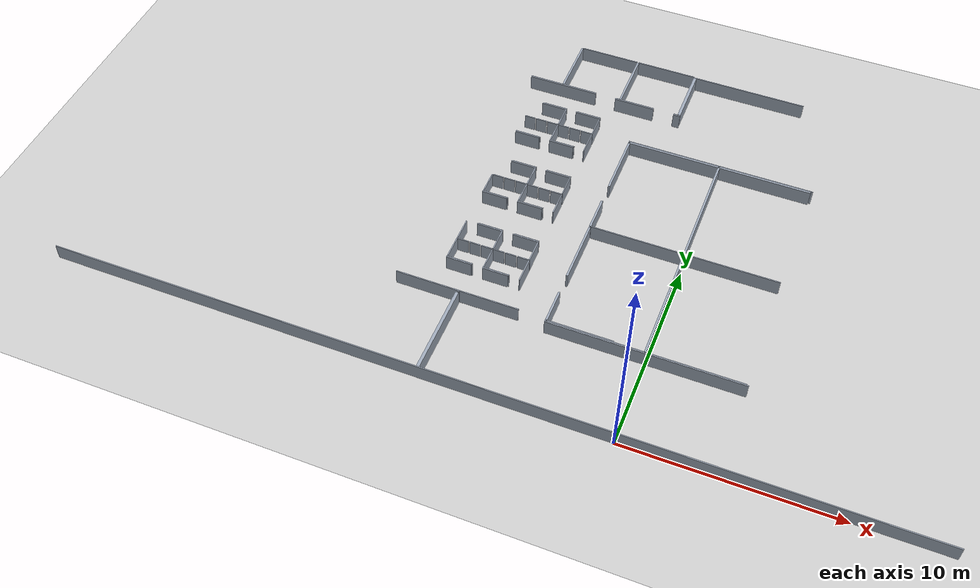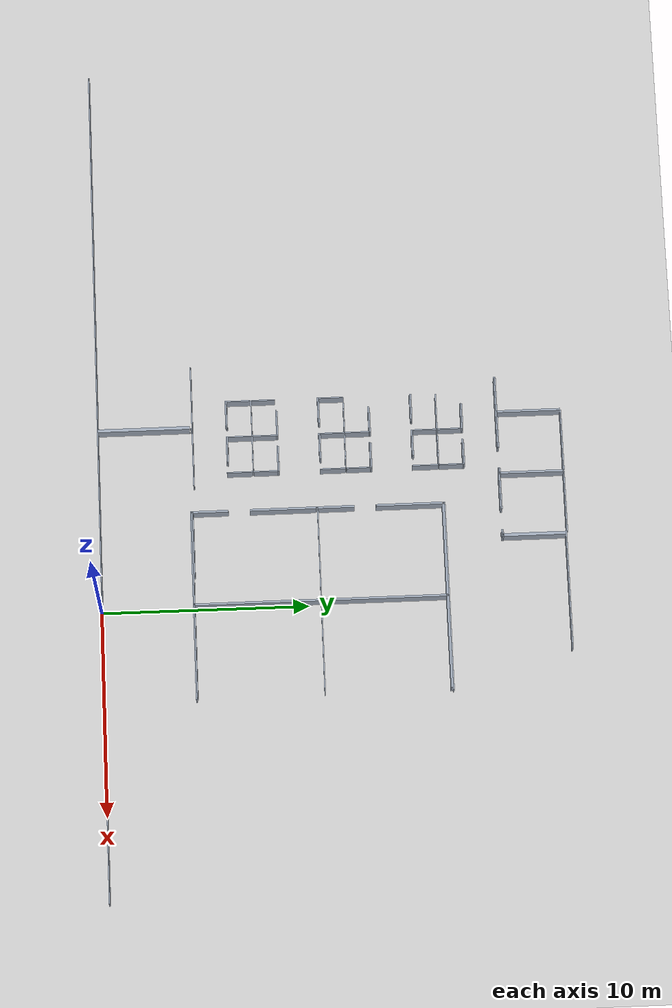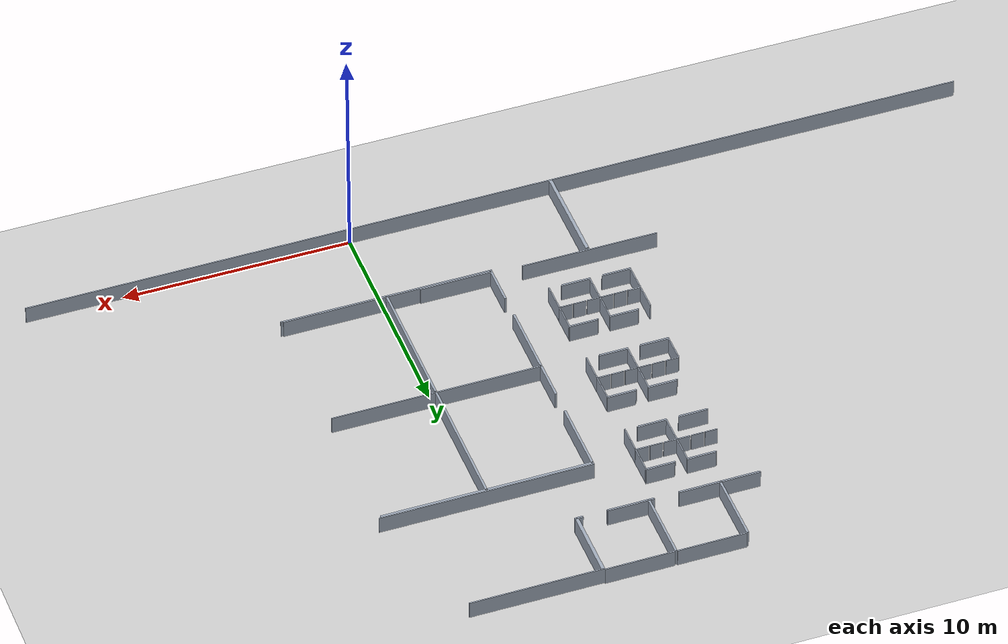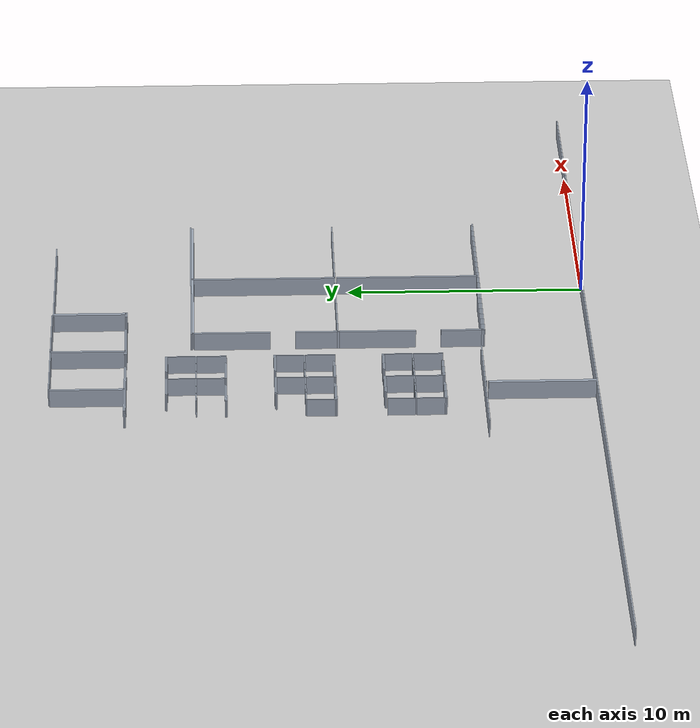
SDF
<sdf version="1.6">
 <world name="default">
  <include><uri>model://ground_plane</uri></include>
  <include><uri>model://sun</uri></include>
  <model name="slam_office_obstacles">
   <static>true</static>
   <link name="wall_3">
    <pose>-7.6500 22.5750 0.4 0 0 0</pose>
    <collision name="collision"><geometry><box><size>3.0000 0.0500 0.8</size></box></geometry></collision>
    <visual name="visual">
     <geometry><box><size>3.0000 0.0500 0.8</size></box></geometry>
     <material><ambient>0.62 0.66 0.72 1</ambient><diffuse>0.62 0.66 0.72 1</diffuse></material>
    </visual>
   </link>
   <link name="wall_4">
    <pose>-4.5500 22.5750 0.4 0 0 0</pose>
    <collision name="collision"><geometry><box><size>3.0000 0.0500 0.8</size></box></geometry></collision>
    <visual name="visual">
     <geometry><box><size>3.0000 0.0500 0.8</size></box></geometry>
     <material><ambient>0.62 0.66 0.72 1</ambient><diffuse>0.62 0.66 0.72 1</diffuse></material>
    </visual>
   </link>
   <link name="wall_8">
    <pose>-0.1500 22.5250 0.4 0 0 0</pose>
    <collision name="collision"><geometry><box><size>5.8000 0.0500 0.8</size></box></geometry></collision>
    <visual name="visual">
     <geometry><box><size>5.8000 0.0500 0.8</size></box></geometry>
     <material><ambient>0.62 0.66 0.72 1</ambient><diffuse>0.62 0.66 0.72 1</diffuse></material>
    </visual>
   </link>
   <link name="wall_13">
    <pose>-9.2000 21.0250 0.4 0 0 0</pose>
    <collision name="collision"><geometry><box><size>0.1000 3.0500 0.8</size></box></geometry></collision>
    <visual name="visual">
     <geometry><box><size>0.1000 3.0500 0.8</size></box></geometry>
     <material><ambient>0.62 0.66 0.72 1</ambient><diffuse>0.62 0.66 0.72 1</diffuse></material>
    </visual>
   </link>
   <link name="wall_14">
    <pose>-6.1000 21.0250 0.4 0 0 0</pose>
    <collision name="collision"><geometry><box><size>0.1000 3.0500 0.8</size></box></geometry></collision>
    <visual name="visual">
     <geometry><box><size>0.1000 3.0500 0.8</size></box></geometry>
     <material><ambient>0.62 0.66 0.72 1</ambient><diffuse>0.62 0.66 0.72 1</diffuse></material>
    </visual>
   </link>
   <link name="wall_17">
    <pose>-2.9750 21.0000 0.4 0 0 0</pose>
    <collision name="collision"><geometry><box><size>0.1500 3.0000 0.8</size></box></geometry></collision>
    <visual name="visual">
     <geometry><box><size>0.1500 3.0000 0.8</size></box></geometry>
     <material><ambient>0.62 0.66 0.72 1</ambient><diffuse>0.62 0.66 0.72 1</diffuse></material>
    </visual>
   </link>
   <link name="wall_24">
    <pose>-10.1000 19.4750 0.4 0 0 0</pose>
    <collision name="collision"><geometry><box><size>1.7000 0.0500 0.8</size></box></geometry></collision>
    <visual name="visual">
     <geometry><box><size>1.7000 0.0500 0.8</size></box></geometry>
     <material><ambient>0.62 0.66 0.72 1</ambient><diffuse>0.62 0.66 0.72 1</diffuse></material>
    </visual>
   </link>
   <link name="wall_25">
    <pose>-8.2750 19.4750 0.4 0 0 0</pose>
    <collision name="collision"><geometry><box><size>1.7500 0.0500 0.8</size></box></geometry></collision>
    <visual name="visual">
     <geometry><box><size>1.7500 0.0500 0.8</size></box></geometry>
     <material><ambient>0.62 0.66 0.72 1</ambient><diffuse>0.62 0.66 0.72 1</diffuse></material>
    </visual>
   </link>
   <link name="wall_26">
    <pose>-6.2500 19.4750 0.4 0 0 0</pose>
    <collision name="collision"><geometry><box><size>0.2000 0.0500 0.8</size></box></geometry></collision>
    <visual name="visual">
     <geometry><box><size>0.2000 0.0500 0.8</size></box></geometry>
     <material><ambient>0.62 0.66 0.72 1</ambient><diffuse>0.62 0.66 0.72 1</diffuse></material>
    </visual>
   </link>
   <link name="wall_27">
    <pose>-5.1750 19.4750 0.4 0 0 0</pose>
    <collision name="collision"><geometry><box><size>1.7500 0.0500 0.8</size></box></geometry></collision>
    <visual name="visual">
     <geometry><box><size>1.7500 0.0500 0.8</size></box></geometry>
     <material><ambient>0.62 0.66 0.72 1</ambient><diffuse>0.62 0.66 0.72 1</diffuse></material>
    </visual>
   </link>
   <link name="wall_28">
    <pose>-3.1500 19.4750 0.4 0 0 0</pose>
    <collision name="collision"><geometry><box><size>0.2000 0.0500 0.8</size></box></geometry></collision>
    <visual name="visual">
     <geometry><box><size>0.2000 0.0500 0.8</size></box></geometry>
     <material><ambient>0.62 0.66 0.72 1</ambient><diffuse>0.62 0.66 0.72 1</diffuse></material>
    </visual>
   </link>
   <link name="wall_29">
    <pose>-2.9250 19.4750 0.4 0 0 0</pose>
    <collision name="collision"><geometry><box><size>0.0500 0.0500 0.8</size></box></geometry></collision>
    <visual name="visual">
     <geometry><box><size>0.0500 0.0500 0.8</size></box></geometry>
     <material><ambient>0.62 0.66 0.72 1</ambient><diffuse>0.62 0.66 0.72 1</diffuse></material>
    </visual>
   </link>
   <link name="wall_38">
    <pose>-9.1750 19.4250 0.4 0 0 0</pose>
    <collision name="collision"><geometry><box><size>3.5500 0.0500 0.8</size></box></geometry></collision>
    <visual name="visual">
     <geometry><box><size>3.5500 0.0500 0.8</size></box></geometry>
     <material><ambient>0.62 0.66 0.72 1</ambient><diffuse>0.62 0.66 0.72 1</diffuse></material>
    </visual>
   </link>
   <link name="wall_39">
    <pose>-5.3250 19.4250 0.4 0 0 0</pose>
    <collision name="collision"><geometry><box><size>2.0500 0.0500 0.8</size></box></geometry></collision>
    <visual name="visual">
     <geometry><box><size>2.0500 0.0500 0.8</size></box></geometry>
     <material><ambient>0.62 0.66 0.72 1</ambient><diffuse>0.62 0.66 0.72 1</diffuse></material>
    </visual>
   </link>
   <link name="wall_40">
    <pose>-3.0750 19.4250 0.4 0 0 0</pose>
    <collision name="collision"><geometry><box><size>0.3500 0.0500 0.8</size></box></geometry></collision>
    <visual name="visual">
     <geometry><box><size>0.3500 0.0500 0.8</size></box></geometry>
     <material><ambient>0.62 0.66 0.72 1</ambient><diffuse>0.62 0.66 0.72 1</diffuse></material>
    </visual>
   </link>
   <link name="wall_50">
    <pose>-9.0250 17.7750 0.4 0 0 0</pose>
    <collision name="collision"><geometry><box><size>1.2500 0.0500 0.8</size></box></geometry></collision>
    <visual name="visual">
     <geometry><box><size>1.2500 0.0500 0.8</size></box></geometry>
     <material><ambient>0.62 0.66 0.72 1</ambient><diffuse>0.62 0.66 0.72 1</diffuse></material>
    </visual>
   </link>
   <link name="wall_51">
    <pose>-7.2250 17.7750 0.4 0 0 0</pose>
    <collision name="collision"><geometry><box><size>1.2500 0.0500 0.8</size></box></geometry></collision>
    <visual name="visual">
     <geometry><box><size>1.2500 0.0500 0.8</size></box></geometry>
     <material><ambient>0.62 0.66 0.72 1</ambient><diffuse>0.62 0.66 0.72 1</diffuse></material>
    </visual>
   </link>
   <link name="wall_57">
    <pose>-9.0500 17.7250 0.4 0 0 0</pose>
    <collision name="collision"><geometry><box><size>1.3000 0.0500 0.8</size></box></geometry></collision>
    <visual name="visual">
     <geometry><box><size>1.3000 0.0500 0.8</size></box></geometry>
     <material><ambient>0.62 0.66 0.72 1</ambient><diffuse>0.62 0.66 0.72 1</diffuse></material>
    </visual>
   </link>
   <link name="wall_58">
    <pose>-7.2500 17.7250 0.4 0 0 0</pose>
    <collision name="collision"><geometry><box><size>1.3000 0.0500 0.8</size></box></geometry></collision>
    <visual name="visual">
     <geometry><box><size>1.3000 0.0500 0.8</size></box></geometry>
     <material><ambient>0.62 0.66 0.72 1</ambient><diffuse>0.62 0.66 0.72 1</diffuse></material>
    </visual>
   </link>
   <link name="wall_59">
    <pose>-0.1000 16.7250 0.4 0 0 0</pose>
    <collision name="collision"><geometry><box><size>9.3000 0.0500 0.8</size></box></geometry></collision>
    <visual name="visual">
     <geometry><box><size>9.3000 0.0500 0.8</size></box></geometry>
     <material><ambient>0.62 0.66 0.72 1</ambient><diffuse>0.62 0.66 0.72 1</diffuse></material>
    </visual>
   </link>
   <link name="wall_60">
    <pose>-4.7250 16.6750 0.4 0 0 0</pose>
    <collision name="collision"><geometry><box><size>0.0500 0.0500 0.8</size></box></geometry></collision>
    <visual name="visual">
     <geometry><box><size>0.0500 0.0500 0.8</size></box></geometry>
     <material><ambient>0.62 0.66 0.72 1</ambient><diffuse>0.62 0.66 0.72 1</diffuse></material>
    </visual>
   </link>
   <link name="wall_62">
    <pose>-2.4000 16.6500 0.4 0 0 0</pose>
    <collision name="collision"><geometry><box><size>4.5000 0.1000 0.8</size></box></geometry></collision>
    <visual name="visual">
     <geometry><box><size>4.5000 0.1000 0.8</size></box></geometry>
     <material><ambient>0.62 0.66 0.72 1</ambient><diffuse>0.62 0.66 0.72 1</diffuse></material>
    </visual>
   </link>
   <link name="wall_63">
    <pose>2.2000 16.6500 0.4 0 0 0</pose>
    <collision name="collision"><geometry><box><size>4.5000 0.1000 0.8</size></box></geometry></collision>
    <visual name="visual">
     <geometry><box><size>4.5000 0.1000 0.8</size></box></geometry>
     <material><ambient>0.62 0.66 0.72 1</ambient><diffuse>0.62 0.66 0.72 1</diffuse></material>
    </visual>
   </link>
   <link name="wall_71">
    <pose>-8.4250 17.1250 0.4 0 0 0</pose>
    <collision name="collision"><geometry><box><size>0.0500 1.1500 0.8</size></box></geometry></collision>
    <visual name="visual">
     <geometry><box><size>0.0500 1.1500 0.8</size></box></geometry>
     <material><ambient>0.62 0.66 0.72 1</ambient><diffuse>0.62 0.66 0.72 1</diffuse></material>
    </visual>
   </link>
   <link name="wall_72">
    <pose>-6.6250 17.1250 0.4 0 0 0</pose>
    <collision name="collision"><geometry><box><size>0.0500 1.1500 0.8</size></box></geometry></collision>
    <visual name="visual">
     <geometry><box><size>0.0500 1.1500 0.8</size></box></geometry>
     <material><ambient>0.62 0.66 0.72 1</ambient><diffuse>0.62 0.66 0.72 1</diffuse></material>
    </visual>
   </link>
   <link name="wall_90">
    <pose>-9.9250 16.5250 0.4 0 0 0</pose>
    <collision name="collision"><geometry><box><size>0.5500 0.0500 0.8</size></box></geometry></collision>
    <visual name="visual">
     <geometry><box><size>0.5500 0.0500 0.8</size></box></geometry>
     <material><ambient>0.62 0.66 0.72 1</ambient><diffuse>0.62 0.66 0.72 1</diffuse></material>
    </visual>
   </link>
   <link name="wall_91">
    <pose>-9.3250 16.5250 0.4 0 0 0</pose>
    <collision name="collision"><geometry><box><size>0.5500 0.0500 0.8</size></box></geometry></collision>
    <visual name="visual">
     <geometry><box><size>0.5500 0.0500 0.8</size></box></geometry>
     <material><ambient>0.62 0.66 0.72 1</ambient><diffuse>0.62 0.66 0.72 1</diffuse></material>
    </visual>
   </link>
   <link name="wall_92">
    <pose>-8.7250 16.5250 0.4 0 0 0</pose>
    <collision name="collision"><geometry><box><size>0.5500 0.0500 0.8</size></box></geometry></collision>
    <visual name="visual">
     <geometry><box><size>0.5500 0.0500 0.8</size></box></geometry>
     <material><ambient>0.62 0.66 0.72 1</ambient><diffuse>0.62 0.66 0.72 1</diffuse></material>
    </visual>
   </link>
   <link name="wall_93">
    <pose>-8.1250 16.5250 0.4 0 0 0</pose>
    <collision name="collision"><geometry><box><size>0.5500 0.0500 0.8</size></box></geometry></collision>
    <visual name="visual">
     <geometry><box><size>0.5500 0.0500 0.8</size></box></geometry>
     <material><ambient>0.62 0.66 0.72 1</ambient><diffuse>0.62 0.66 0.72 1</diffuse></material>
    </visual>
   </link>
   <link name="wall_94">
    <pose>-7.5250 16.5250 0.4 0 0 0</pose>
    <collision name="collision"><geometry><box><size>0.5500 0.0500 0.8</size></box></geometry></collision>
    <visual name="visual">
     <geometry><box><size>0.5500 0.0500 0.8</size></box></geometry>
     <material><ambient>0.62 0.66 0.72 1</ambient><diffuse>0.62 0.66 0.72 1</diffuse></material>
    </visual>
   </link>
   <link name="wall_95">
    <pose>-6.9250 16.5250 0.4 0 0 0</pose>
    <collision name="collision"><geometry><box><size>0.5500 0.0500 0.8</size></box></geometry></collision>
    <visual name="visual">
     <geometry><box><size>0.5500 0.0500 0.8</size></box></geometry>
     <material><ambient>0.62 0.66 0.72 1</ambient><diffuse>0.62 0.66 0.72 1</diffuse></material>
    </visual>
   </link>
   <link name="wall_109">
    <pose>-8.4250 15.9250 0.4 0 0 0</pose>
    <collision name="collision"><geometry><box><size>0.0500 1.1500 0.8</size></box></geometry></collision>
    <visual name="visual">
     <geometry><box><size>0.0500 1.1500 0.8</size></box></geometry>
     <material><ambient>0.62 0.66 0.72 1</ambient><diffuse>0.62 0.66 0.72 1</diffuse></material>
    </visual>
   </link>
   <link name="wall_115">
    <pose>-9.6000 15.3250 0.4 0 0 0</pose>
    <collision name="collision"><geometry><box><size>1.3000 0.0500 0.8</size></box></geometry></collision>
    <visual name="visual">
     <geometry><box><size>1.3000 0.0500 0.8</size></box></geometry>
     <material><ambient>0.62 0.66 0.72 1</ambient><diffuse>0.62 0.66 0.72 1</diffuse></material>
    </visual>
   </link>
   <link name="wall_116">
    <pose>-7.8000 15.3250 0.4 0 0 0</pose>
    <collision name="collision"><geometry><box><size>1.3000 0.0500 0.8</size></box></geometry></collision>
    <visual name="visual">
     <geometry><box><size>1.3000 0.0500 0.8</size></box></geometry>
     <material><ambient>0.62 0.66 0.72 1</ambient><diffuse>0.62 0.66 0.72 1</diffuse></material>
    </visual>
   </link>
   <link name="wall_118">
    <pose>-6.6250 15.8750 0.4 0 0 0</pose>
    <collision name="collision"><geometry><box><size>0.0500 1.2500 0.8</size></box></geometry></collision>
    <visual name="visual">
     <geometry><box><size>0.0500 1.2500 0.8</size></box></geometry>
     <material><ambient>0.62 0.66 0.72 1</ambient><diffuse>0.62 0.66 0.72 1</diffuse></material>
    </visual>
   </link>
   <link name="wall_124">
    <pose>-9.6250 15.2750 0.4 0 0 0</pose>
    <collision name="collision"><geometry><box><size>1.2500 0.0500 0.8</size></box></geometry></collision>
    <visual name="visual">
     <geometry><box><size>1.2500 0.0500 0.8</size></box></geometry>
     <material><ambient>0.62 0.66 0.72 1</ambient><diffuse>0.62 0.66 0.72 1</diffuse></material>
    </visual>
   </link>
   <link name="wall_125">
    <pose>-7.8250 15.2750 0.4 0 0 0</pose>
    <collision name="collision"><geometry><box><size>1.2500 0.0500 0.8</size></box></geometry></collision>
    <visual name="visual">
     <geometry><box><size>1.2500 0.0500 0.8</size></box></geometry>
     <material><ambient>0.62 0.66 0.72 1</ambient><diffuse>0.62 0.66 0.72 1</diffuse></material>
    </visual>
   </link>
   <link name="wall_142">
    <pose>-4.7000 15.0000 0.4 0 0 0</pose>
    <collision name="collision"><geometry><box><size>0.1000 3.2000 0.8</size></box></geometry></collision>
    <visual name="visual">
     <geometry><box><size>0.1000 3.2000 0.8</size></box></geometry>
     <material><ambient>0.62 0.66 0.72 1</ambient><diffuse>0.62 0.66 0.72 1</diffuse></material>
    </visual>
   </link>
   <link name="wall_151">
    <pose>-9.0250 13.2750 0.4 0 0 0</pose>
    <collision name="collision"><geometry><box><size>1.2500 0.0500 0.8</size></box></geometry></collision>
    <visual name="visual">
     <geometry><box><size>1.2500 0.0500 0.8</size></box></geometry>
     <material><ambient>0.62 0.66 0.72 1</ambient><diffuse>0.62 0.66 0.72 1</diffuse></material>
    </visual>
   </link>
   <link name="wall_152">
    <pose>-7.2250 13.2750 0.4 0 0 0</pose>
    <collision name="collision"><geometry><box><size>1.2500 0.0500 0.8</size></box></geometry></collision>
    <visual name="visual">
     <geometry><box><size>1.2500 0.0500 0.8</size></box></geometry>
     <material><ambient>0.62 0.66 0.72 1</ambient><diffuse>0.62 0.66 0.72 1</diffuse></material>
    </visual>
   </link>
   <link name="wall_158">
    <pose>-9.0500 13.2250 0.4 0 0 0</pose>
    <collision name="collision"><geometry><box><size>1.3000 0.0500 0.8</size></box></geometry></collision>
    <visual name="visual">
     <geometry><box><size>1.3000 0.0500 0.8</size></box></geometry>
     <material><ambient>0.62 0.66 0.72 1</ambient><diffuse>0.62 0.66 0.72 1</diffuse></material>
    </visual>
   </link>
   <link name="wall_159">
    <pose>-7.2500 13.2250 0.4 0 0 0</pose>
    <collision name="collision"><geometry><box><size>1.3000 0.0500 0.8</size></box></geometry></collision>
    <visual name="visual">
     <geometry><box><size>1.3000 0.0500 0.8</size></box></geometry>
     <material><ambient>0.62 0.66 0.72 1</ambient><diffuse>0.62 0.66 0.72 1</diffuse></material>
    </visual>
   </link>
   <link name="wall_173">
    <pose>-8.4250 12.6250 0.4 0 0 0</pose>
    <collision name="collision"><geometry><box><size>0.0500 1.1500 0.8</size></box></geometry></collision>
    <visual name="visual">
     <geometry><box><size>0.0500 1.1500 0.8</size></box></geometry>
     <material><ambient>0.62 0.66 0.72 1</ambient><diffuse>0.62 0.66 0.72 1</diffuse></material>
    </visual>
   </link>
   <link name="wall_174">
    <pose>-6.6250 12.6250 0.4 0 0 0</pose>
    <collision name="collision"><geometry><box><size>0.0500 1.1500 0.8</size></box></geometry></collision>
    <visual name="visual">
     <geometry><box><size>0.0500 1.1500 0.8</size></box></geometry>
     <material><ambient>0.62 0.66 0.72 1</ambient><diffuse>0.62 0.66 0.72 1</diffuse></material>
    </visual>
   </link>
   <link name="wall_190">
    <pose>-9.9250 12.0250 0.4 0 0 0</pose>
    <collision name="collision"><geometry><box><size>0.5500 0.0500 0.8</size></box></geometry></collision>
    <visual name="visual">
     <geometry><box><size>0.5500 0.0500 0.8</size></box></geometry>
     <material><ambient>0.62 0.66 0.72 1</ambient><diffuse>0.62 0.66 0.72 1</diffuse></material>
    </visual>
   </link>
   <link name="wall_191">
    <pose>-9.3250 12.0250 0.4 0 0 0</pose>
    <collision name="collision"><geometry><box><size>0.5500 0.0500 0.8</size></box></geometry></collision>
    <visual name="visual">
     <geometry><box><size>0.5500 0.0500 0.8</size></box></geometry>
     <material><ambient>0.62 0.66 0.72 1</ambient><diffuse>0.62 0.66 0.72 1</diffuse></material>
    </visual>
   </link>
   <link name="wall_192">
    <pose>-8.7250 12.0250 0.4 0 0 0</pose>
    <collision name="collision"><geometry><box><size>0.5500 0.0500 0.8</size></box></geometry></collision>
    <visual name="visual">
     <geometry><box><size>0.5500 0.0500 0.8</size></box></geometry>
     <material><ambient>0.62 0.66 0.72 1</ambient><diffuse>0.62 0.66 0.72 1</diffuse></material>
    </visual>
   </link>
   <link name="wall_193">
    <pose>-8.1250 12.0250 0.4 0 0 0</pose>
    <collision name="collision"><geometry><box><size>0.5500 0.0500 0.8</size></box></geometry></collision>
    <visual name="visual">
     <geometry><box><size>0.5500 0.0500 0.8</size></box></geometry>
     <material><ambient>0.62 0.66 0.72 1</ambient><diffuse>0.62 0.66 0.72 1</diffuse></material>
    </visual>
   </link>
   <link name="wall_194">
    <pose>-7.5250 12.0250 0.4 0 0 0</pose>
    <collision name="collision"><geometry><box><size>0.5500 0.0500 0.8</size></box></geometry></collision>
    <visual name="visual">
     <geometry><box><size>0.5500 0.0500 0.8</size></box></geometry>
     <material><ambient>0.62 0.66 0.72 1</ambient><diffuse>0.62 0.66 0.72 1</diffuse></material>
    </visual>
   </link>
   <link name="wall_195">
    <pose>-6.9250 12.0250 0.4 0 0 0</pose>
    <collision name="collision"><geometry><box><size>0.5500 0.0500 0.8</size></box></geometry></collision>
    <visual name="visual">
     <geometry><box><size>0.5500 0.0500 0.8</size></box></geometry>
     <material><ambient>0.62 0.66 0.72 1</ambient><diffuse>0.62 0.66 0.72 1</diffuse></material>
    </visual>
   </link>
   <link name="wall_212">
    <pose>-10.2250 11.4250 0.4 0 0 0</pose>
    <collision name="collision"><geometry><box><size>0.0500 1.1500 0.8</size></box></geometry></collision>
    <visual name="visual">
     <geometry><box><size>0.0500 1.1500 0.8</size></box></geometry>
     <material><ambient>0.62 0.66 0.72 1</ambient><diffuse>0.62 0.66 0.72 1</diffuse></material>
    </visual>
   </link>
   <link name="wall_213">
    <pose>-8.4250 11.4250 0.4 0 0 0</pose>
    <collision name="collision"><geometry><box><size>0.0500 1.1500 0.8</size></box></geometry></collision>
    <visual name="visual">
     <geometry><box><size>0.0500 1.1500 0.8</size></box></geometry>
     <material><ambient>0.62 0.66 0.72 1</ambient><diffuse>0.62 0.66 0.72 1</diffuse></material>
    </visual>
   </link>
   <link name="wall_219">
    <pose>-9.6000 10.8250 0.4 0 0 0</pose>
    <collision name="collision"><geometry><box><size>1.3000 0.0500 0.8</size></box></geometry></collision>
    <visual name="visual">
     <geometry><box><size>1.3000 0.0500 0.8</size></box></geometry>
     <material><ambient>0.62 0.66 0.72 1</ambient><diffuse>0.62 0.66 0.72 1</diffuse></material>
    </visual>
   </link>
   <link name="wall_220">
    <pose>-7.8000 10.8250 0.4 0 0 0</pose>
    <collision name="collision"><geometry><box><size>1.3000 0.0500 0.8</size></box></geometry></collision>
    <visual name="visual">
     <geometry><box><size>1.3000 0.0500 0.8</size></box></geometry>
     <material><ambient>0.62 0.66 0.72 1</ambient><diffuse>0.62 0.66 0.72 1</diffuse></material>
    </visual>
   </link>
   <link name="wall_222">
    <pose>-6.6250 11.3750 0.4 0 0 0</pose>
    <collision name="collision"><geometry><box><size>0.0500 1.2500 0.8</size></box></geometry></collision>
    <visual name="visual">
     <geometry><box><size>0.0500 1.2500 0.8</size></box></geometry>
     <material><ambient>0.62 0.66 0.72 1</ambient><diffuse>0.62 0.66 0.72 1</diffuse></material>
    </visual>
   </link>
   <link name="wall_228">
    <pose>-9.6250 10.7750 0.4 0 0 0</pose>
    <collision name="collision"><geometry><box><size>1.2500 0.0500 0.8</size></box></geometry></collision>
    <visual name="visual">
     <geometry><box><size>1.2500 0.0500 0.8</size></box></geometry>
     <material><ambient>0.62 0.66 0.72 1</ambient><diffuse>0.62 0.66 0.72 1</diffuse></material>
    </visual>
   </link>
   <link name="wall_229">
    <pose>-7.8250 10.7750 0.4 0 0 0</pose>
    <collision name="collision"><geometry><box><size>1.2500 0.0500 0.8</size></box></geometry></collision>
    <visual name="visual">
     <geometry><box><size>1.2500 0.0500 0.8</size></box></geometry>
     <material><ambient>0.62 0.66 0.72 1</ambient><diffuse>0.62 0.66 0.72 1</diffuse></material>
    </visual>
   </link>
   <link name="wall_230">
    <pose>-0.1000 13.6000 0.4 0 0 0</pose>
    <collision name="collision"><geometry><box><size>0.1000 6.0000 0.8</size></box></geometry></collision>
    <visual name="visual">
     <geometry><box><size>0.1000 6.0000 0.8</size></box></geometry>
     <material><ambient>0.62 0.66 0.72 1</ambient><diffuse>0.62 0.66 0.72 1</diffuse></material>
    </visual>
   </link>
   <link name="wall_232">
    <pose>-4.7000 11.4750 0.4 0 0 0</pose>
    <collision name="collision"><geometry><box><size>0.1000 1.7500 0.8</size></box></geometry></collision>
    <visual name="visual">
     <geometry><box><size>0.1000 1.7500 0.8</size></box></geometry>
     <material><ambient>0.62 0.66 0.72 1</ambient><diffuse>0.62 0.66 0.72 1</diffuse></material>
    </visual>
   </link>
   <link name="wall_234">
    <pose>-2.4000 10.5750 0.4 0 0 0</pose>
    <collision name="collision"><geometry><box><size>4.5000 0.0500 0.8</size></box></geometry></collision>
    <visual name="visual">
     <geometry><box><size>4.5000 0.0500 0.8</size></box></geometry>
     <material><ambient>0.62 0.66 0.72 1</ambient><diffuse>0.62 0.66 0.72 1</diffuse></material>
    </visual>
   </link>
   <link name="wall_235">
    <pose>2.2000 10.5750 0.4 0 0 0</pose>
    <collision name="collision"><geometry><box><size>4.5000 0.0500 0.8</size></box></geometry></collision>
    <visual name="visual">
     <geometry><box><size>4.5000 0.0500 0.8</size></box></geometry>
     <material><ambient>0.62 0.66 0.72 1</ambient><diffuse>0.62 0.66 0.72 1</diffuse></material>
    </visual>
   </link>
   <link name="wall_236">
    <pose>-4.7250 10.5500 0.4 0 0 0</pose>
    <collision name="collision"><geometry><box><size>0.0500 0.1000 0.8</size></box></geometry></collision>
    <visual name="visual">
     <geometry><box><size>0.0500 0.1000 0.8</size></box></geometry>
     <material><ambient>0.62 0.66 0.72 1</ambient><diffuse>0.62 0.66 0.72 1</diffuse></material>
    </visual>
   </link>
   <link name="wall_248">
    <pose>-9.0250 8.7750 0.4 0 0 0</pose>
    <collision name="collision"><geometry><box><size>1.2500 0.0500 0.8</size></box></geometry></collision>
    <visual name="visual">
     <geometry><box><size>1.2500 0.0500 0.8</size></box></geometry>
     <material><ambient>0.62 0.66 0.72 1</ambient><diffuse>0.62 0.66 0.72 1</diffuse></material>
    </visual>
   </link>
   <link name="wall_249">
    <pose>-7.2250 8.7750 0.4 0 0 0</pose>
    <collision name="collision"><geometry><box><size>1.2500 0.0500 0.8</size></box></geometry></collision>
    <visual name="visual">
     <geometry><box><size>1.2500 0.0500 0.8</size></box></geometry>
     <material><ambient>0.62 0.66 0.72 1</ambient><diffuse>0.62 0.66 0.72 1</diffuse></material>
    </visual>
   </link>
   <link name="wall_255">
    <pose>-9.0500 8.7250 0.4 0 0 0</pose>
    <collision name="collision"><geometry><box><size>1.3000 0.0500 0.8</size></box></geometry></collision>
    <visual name="visual">
     <geometry><box><size>1.3000 0.0500 0.8</size></box></geometry>
     <material><ambient>0.62 0.66 0.72 1</ambient><diffuse>0.62 0.66 0.72 1</diffuse></material>
    </visual>
   </link>
   <link name="wall_256">
    <pose>-7.2500 8.7250 0.4 0 0 0</pose>
    <collision name="collision"><geometry><box><size>1.3000 0.0500 0.8</size></box></geometry></collision>
    <visual name="visual">
     <geometry><box><size>1.3000 0.0500 0.8</size></box></geometry>
     <material><ambient>0.62 0.66 0.72 1</ambient><diffuse>0.62 0.66 0.72 1</diffuse></material>
    </visual>
   </link>
   <link name="wall_265">
    <pose>-10.2250 8.1250 0.4 0 0 0</pose>
    <collision name="collision"><geometry><box><size>0.0500 1.1500 0.8</size></box></geometry></collision>
    <visual name="visual">
     <geometry><box><size>0.0500 1.1500 0.8</size></box></geometry>
     <material><ambient>0.62 0.66 0.72 1</ambient><diffuse>0.62 0.66 0.72 1</diffuse></material>
    </visual>
   </link>
   <link name="wall_266">
    <pose>-8.4250 8.1250 0.4 0 0 0</pose>
    <collision name="collision"><geometry><box><size>0.0500 1.1500 0.8</size></box></geometry></collision>
    <visual name="visual">
     <geometry><box><size>0.0500 1.1500 0.8</size></box></geometry>
     <material><ambient>0.62 0.66 0.72 1</ambient><diffuse>0.62 0.66 0.72 1</diffuse></material>
    </visual>
   </link>
   <link name="wall_267">
    <pose>-6.6250 8.1250 0.4 0 0 0</pose>
    <collision name="collision"><geometry><box><size>0.0500 1.1500 0.8</size></box></geometry></collision>
    <visual name="visual">
     <geometry><box><size>0.0500 1.1500 0.8</size></box></geometry>
     <material><ambient>0.62 0.66 0.72 1</ambient><diffuse>0.62 0.66 0.72 1</diffuse></material>
    </visual>
   </link>
   <link name="wall_285">
    <pose>-9.9250 7.5250 0.4 0 0 0</pose>
    <collision name="collision"><geometry><box><size>0.5500 0.0500 0.8</size></box></geometry></collision>
    <visual name="visual">
     <geometry><box><size>0.5500 0.0500 0.8</size></box></geometry>
     <material><ambient>0.62 0.66 0.72 1</ambient><diffuse>0.62 0.66 0.72 1</diffuse></material>
    </visual>
   </link>
   <link name="wall_286">
    <pose>-9.3250 7.5250 0.4 0 0 0</pose>
    <collision name="collision"><geometry><box><size>0.5500 0.0500 0.8</size></box></geometry></collision>
    <visual name="visual">
     <geometry><box><size>0.5500 0.0500 0.8</size></box></geometry>
     <material><ambient>0.62 0.66 0.72 1</ambient><diffuse>0.62 0.66 0.72 1</diffuse></material>
    </visual>
   </link>
   <link name="wall_287">
    <pose>-8.7250 7.5250 0.4 0 0 0</pose>
    <collision name="collision"><geometry><box><size>0.5500 0.0500 0.8</size></box></geometry></collision>
    <visual name="visual">
     <geometry><box><size>0.5500 0.0500 0.8</size></box></geometry>
     <material><ambient>0.62 0.66 0.72 1</ambient><diffuse>0.62 0.66 0.72 1</diffuse></material>
    </visual>
   </link>
   <link name="wall_288">
    <pose>-8.1250 7.5250 0.4 0 0 0</pose>
    <collision name="collision"><geometry><box><size>0.5500 0.0500 0.8</size></box></geometry></collision>
    <visual name="visual">
     <geometry><box><size>0.5500 0.0500 0.8</size></box></geometry>
     <material><ambient>0.62 0.66 0.72 1</ambient><diffuse>0.62 0.66 0.72 1</diffuse></material>
    </visual>
   </link>
   <link name="wall_289">
    <pose>-7.5250 7.5250 0.4 0 0 0</pose>
    <collision name="collision"><geometry><box><size>0.5500 0.0500 0.8</size></box></geometry></collision>
    <visual name="visual">
     <geometry><box><size>0.5500 0.0500 0.8</size></box></geometry>
     <material><ambient>0.62 0.66 0.72 1</ambient><diffuse>0.62 0.66 0.72 1</diffuse></material>
    </visual>
   </link>
   <link name="wall_290">
    <pose>-6.9250 7.5250 0.4 0 0 0</pose>
    <collision name="collision"><geometry><box><size>0.5500 0.0500 0.8</size></box></geometry></collision>
    <visual name="visual">
     <geometry><box><size>0.5500 0.0500 0.8</size></box></geometry>
     <material><ambient>0.62 0.66 0.72 1</ambient><diffuse>0.62 0.66 0.72 1</diffuse></material>
    </visual>
   </link>
   <link name="wall_292">
    <pose>-4.7000 8.9000 0.4 0 0 0</pose>
    <collision name="collision"><geometry><box><size>0.1000 3.2000 0.8</size></box></geometry></collision>
    <visual name="visual">
     <geometry><box><size>0.1000 3.2000 0.8</size></box></geometry>
     <material><ambient>0.62 0.66 0.72 1</ambient><diffuse>0.62 0.66 0.72 1</diffuse></material>
    </visual>
   </link>
   <link name="wall_300">
    <pose>-10.2250 6.9250 0.4 0 0 0</pose>
    <collision name="collision"><geometry><box><size>0.0500 1.1500 0.8</size></box></geometry></collision>
    <visual name="visual">
     <geometry><box><size>0.0500 1.1500 0.8</size></box></geometry>
     <material><ambient>0.62 0.66 0.72 1</ambient><diffuse>0.62 0.66 0.72 1</diffuse></material>
    </visual>
   </link>
   <link name="wall_301">
    <pose>-8.4250 6.9250 0.4 0 0 0</pose>
    <collision name="collision"><geometry><box><size>0.0500 1.1500 0.8</size></box></geometry></collision>
    <visual name="visual">
     <geometry><box><size>0.0500 1.1500 0.8</size></box></geometry>
     <material><ambient>0.62 0.66 0.72 1</ambient><diffuse>0.62 0.66 0.72 1</diffuse></material>
    </visual>
   </link>
   <link name="wall_307">
    <pose>-9.6000 6.3250 0.4 0 0 0</pose>
    <collision name="collision"><geometry><box><size>1.3000 0.0500 0.8</size></box></geometry></collision>
    <visual name="visual">
     <geometry><box><size>1.3000 0.0500 0.8</size></box></geometry>
     <material><ambient>0.62 0.66 0.72 1</ambient><diffuse>0.62 0.66 0.72 1</diffuse></material>
    </visual>
   </link>
   <link name="wall_308">
    <pose>-7.8000 6.3250 0.4 0 0 0</pose>
    <collision name="collision"><geometry><box><size>1.3000 0.0500 0.8</size></box></geometry></collision>
    <visual name="visual">
     <geometry><box><size>1.3000 0.0500 0.8</size></box></geometry>
     <material><ambient>0.62 0.66 0.72 1</ambient><diffuse>0.62 0.66 0.72 1</diffuse></material>
    </visual>
   </link>
   <link name="wall_310">
    <pose>-6.6250 6.8750 0.4 0 0 0</pose>
    <collision name="collision"><geometry><box><size>0.0500 1.2500 0.8</size></box></geometry></collision>
    <visual name="visual">
     <geometry><box><size>0.0500 1.2500 0.8</size></box></geometry>
     <material><ambient>0.62 0.66 0.72 1</ambient><diffuse>0.62 0.66 0.72 1</diffuse></material>
    </visual>
   </link>
   <link name="wall_316">
    <pose>-9.6250 6.2750 0.4 0 0 0</pose>
    <collision name="collision"><geometry><box><size>1.2500 0.0500 0.8</size></box></geometry></collision>
    <visual name="visual">
     <geometry><box><size>1.2500 0.0500 0.8</size></box></geometry>
     <material><ambient>0.62 0.66 0.72 1</ambient><diffuse>0.62 0.66 0.72 1</diffuse></material>
    </visual>
   </link>
   <link name="wall_317">
    <pose>-7.8250 6.2750 0.4 0 0 0</pose>
    <collision name="collision"><geometry><box><size>1.2500 0.0500 0.8</size></box></geometry></collision>
    <visual name="visual">
     <geometry><box><size>1.2500 0.0500 0.8</size></box></geometry>
     <material><ambient>0.62 0.66 0.72 1</ambient><diffuse>0.62 0.66 0.72 1</diffuse></material>
    </visual>
   </link>
   <link name="wall_325">
    <pose>-9.0500 4.6250 0.4 0 0 0</pose>
    <collision name="collision"><geometry><box><size>6.0000 0.0500 0.8</size></box></geometry></collision>
    <visual name="visual">
     <geometry><box><size>6.0000 0.0500 0.8</size></box></geometry>
     <material><ambient>0.62 0.66 0.72 1</ambient><diffuse>0.62 0.66 0.72 1</diffuse></material>
    </visual>
   </link>
   <link name="wall_327">
    <pose>-4.7000 5.4000 0.4 0 0 0</pose>
    <collision name="collision"><geometry><box><size>0.1000 1.7000 0.8</size></box></geometry></collision>
    <visual name="visual">
     <geometry><box><size>0.1000 1.7000 0.8</size></box></geometry>
     <material><ambient>0.62 0.66 0.72 1</ambient><diffuse>0.62 0.66 0.72 1</diffuse></material>
    </visual>
   </link>
   <link name="wall_334">
    <pose>-8.9250 4.5750 0.4 0 0 0</pose>
    <collision name="collision"><geometry><box><size>0.0500 0.0500 0.8</size></box></geometry></collision>
    <visual name="visual">
     <geometry><box><size>0.0500 0.0500 0.8</size></box></geometry>
     <material><ambient>0.62 0.66 0.72 1</ambient><diffuse>0.62 0.66 0.72 1</diffuse></material>
    </visual>
   </link>
   <link name="wall_335">
    <pose>-0.1000 7.5000 0.4 0 0 0</pose>
    <collision name="collision"><geometry><box><size>0.1000 6.0000 0.8</size></box></geometry></collision>
    <visual name="visual">
     <geometry><box><size>0.1000 6.0000 0.8</size></box></geometry>
     <material><ambient>0.62 0.66 0.72 1</ambient><diffuse>0.62 0.66 0.72 1</diffuse></material>
    </visual>
   </link>
   <link name="wall_340">
    <pose>-3.1000 4.5250 0.4 0 0 0</pose>
    <collision name="collision"><geometry><box><size>3.1000 0.0500 0.8</size></box></geometry></collision>
    <visual name="visual">
     <geometry><box><size>3.1000 0.0500 0.8</size></box></geometry>
     <material><ambient>0.62 0.66 0.72 1</ambient><diffuse>0.62 0.66 0.72 1</diffuse></material>
    </visual>
   </link>
   <link name="wall_343">
    <pose>-4.7250 4.5000 0.4 0 0 0</pose>
    <collision name="collision"><geometry><box><size>0.0500 0.1000 0.8</size></box></geometry></collision>
    <visual name="visual">
     <geometry><box><size>0.0500 0.1000 0.8</size></box></geometry>
     <material><ambient>0.62 0.66 0.72 1</ambient><diffuse>0.62 0.66 0.72 1</diffuse></material>
    </visual>
   </link>
   <link name="wall_344">
    <pose>-2.4000 4.4750 0.4 0 0 0</pose>
    <collision name="collision"><geometry><box><size>4.5000 0.0500 0.8</size></box></geometry></collision>
    <visual name="visual">
     <geometry><box><size>4.5000 0.0500 0.8</size></box></geometry>
     <material><ambient>0.62 0.66 0.72 1</ambient><diffuse>0.62 0.66 0.72 1</diffuse></material>
    </visual>
   </link>
   <link name="wall_345">
    <pose>2.2000 4.4750 0.4 0 0 0</pose>
    <collision name="collision"><geometry><box><size>4.5000 0.0500 0.8</size></box></geometry></collision>
    <visual name="visual">
     <geometry><box><size>4.5000 0.0500 0.8</size></box></geometry>
     <material><ambient>0.62 0.66 0.72 1</ambient><diffuse>0.62 0.66 0.72 1</diffuse></material>
    </visual>
   </link>
   <link name="wall_347">
    <pose>-0.1000 4.4250 0.4 0 0 0</pose>
    <collision name="collision"><geometry><box><size>9.3000 0.0500 0.8</size></box></geometry></collision>
    <visual name="visual">
     <geometry><box><size>9.3000 0.0500 0.8</size></box></geometry>
     <material><ambient>0.62 0.66 0.72 1</ambient><diffuse>0.62 0.66 0.72 1</diffuse></material>
    </visual>
   </link>
   <link name="wall_362">
    <pose>-8.9750 2.2750 0.4 0 0 0</pose>
    <collision name="collision"><geometry><box><size>0.1500 4.4500 0.8</size></box></geometry></collision>
    <visual name="visual">
     <geometry><box><size>0.1500 4.4500 0.8</size></box></geometry>
     <material><ambient>0.62 0.66 0.72 1</ambient><diffuse>0.62 0.66 0.72 1</diffuse></material>
    </visual>
   </link>
   <link name="wall_367">
    <pose>-6.5500 0.0250 0.4 0 0 0</pose>
    <collision name="collision"><geometry><box><size>41.6000 0.0500 0.8</size></box></geometry></collision>
    <visual name="visual">
     <geometry><box><size>41.6000 0.0500 0.8</size></box></geometry>
     <material><ambient>0.62 0.66 0.72 1</ambient><diffuse>0.62 0.66 0.72 1</diffuse></material>
    </visual>
   </link>
  </model>
 </world>
</sdf>
